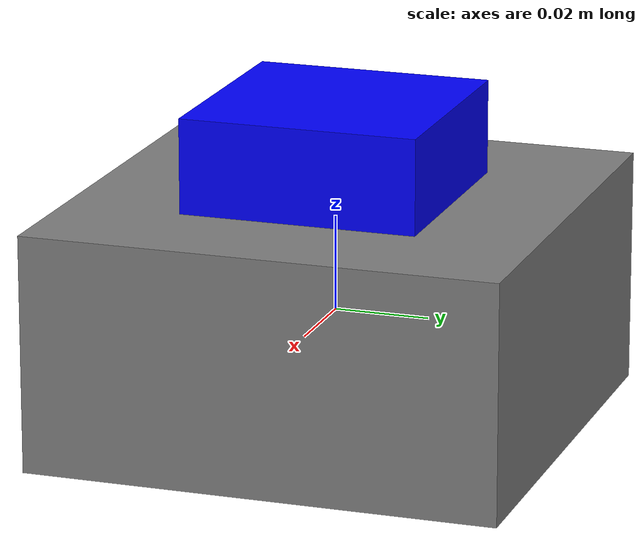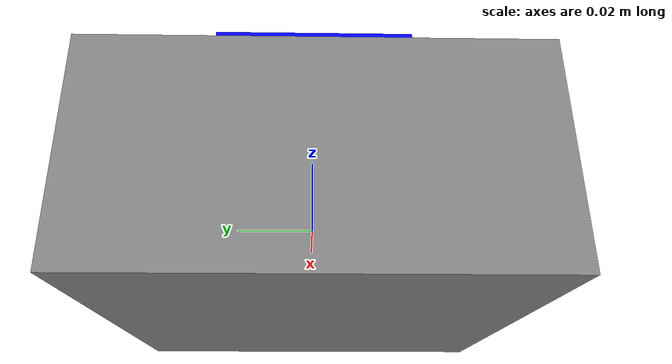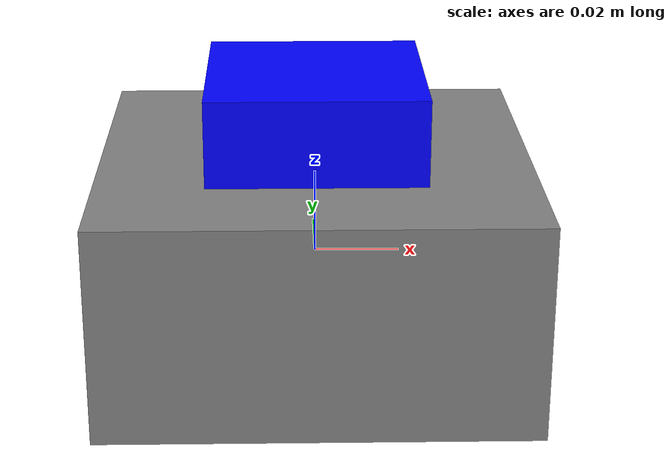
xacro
<?xml version="1.0"?>
<robot name="sealand_imu" xmlns:xacro="http://ros.org/wiki/xacro">
    <!-- Serial device configurations -->
    <xacro:property name="imu_serial_device" default="/dev/serial/by-id/usb-Silicon_Labs_CP2102N_USB_to_UART_Bridge_Controller_04520ac6373eee1183cf06157ba77520-if00-port0" />

    <!-- IMU link -->
    <link name="imu_link">
        <visual>
            <geometry>
                <box size="0.05 0.05 0.02" />
            </geometry>
            <material name="blue">
                <color rgba="0 0 1 1" />
            </material>
        </visual>
        <collision>
            <geometry>
                <box size="0.05 0.05 0.02" />
            </geometry>
        </collision>
        <inertial>
            <mass value="0.1" />
            <inertia ixx="0.001" ixy="0" ixz="0" iyy="0.001" iyz="0" izz="0.001" />
        </inertial>
    </link>

    <!-- Base link -->
    <link name="base_link">
        <visual>
            <geometry>
                <box size="0.1 0.1 0.05" />
            </geometry>
            <material name="gray">
                <color rgba="0.5 0.5 0.5 1" />
            </material>
        </visual>
        <collision>
            <geometry>
                <box size="0.1 0.1 0.05" />
            </geometry>
        </collision>
        <inertial>
            <mass value="0.5" />
            <inertia ixx="0.01" ixy="0" ixz="0" iyy="0.01" iyz="0" izz="0.01" />
        </inertial>
    </link>

    <!-- Joint connecting base_link to imu_link -->
    <joint name="base_to_imu" type="fixed">
        <parent link="base_link" />
        <child link="imu_link" />
        <origin xyz="0 0 0.035" rpy="0 0 0" />
    </joint>

    <xacro:include filename="$(find sealand_control)/description/ros2_control/sealand_imu.ros2_control.urdf.xacro" />
    <xacro:sealand_imu_ros2_control name="SealandIMU" serial_device="${imu_serial_device}" baudrate="921600" />

</robot>
